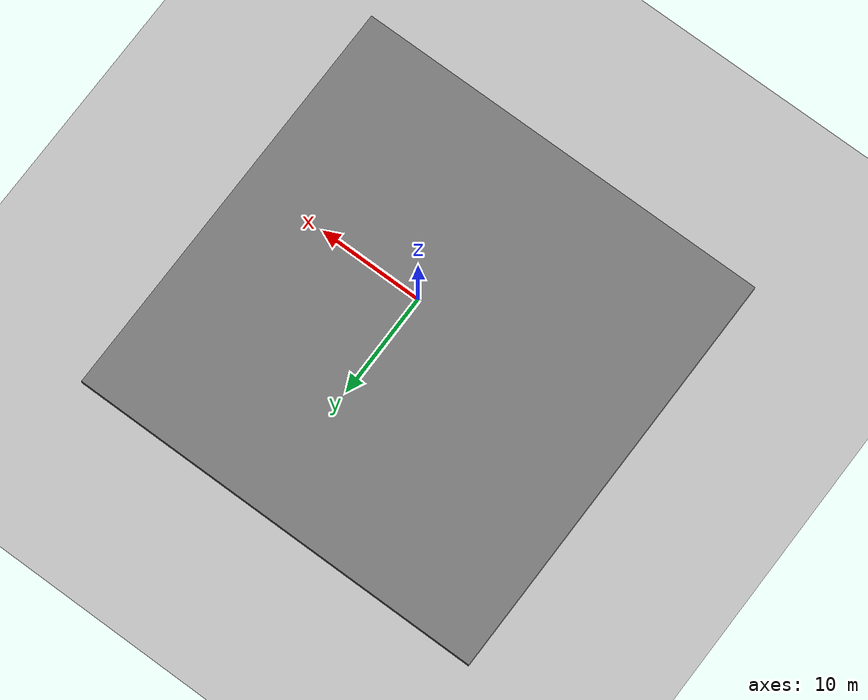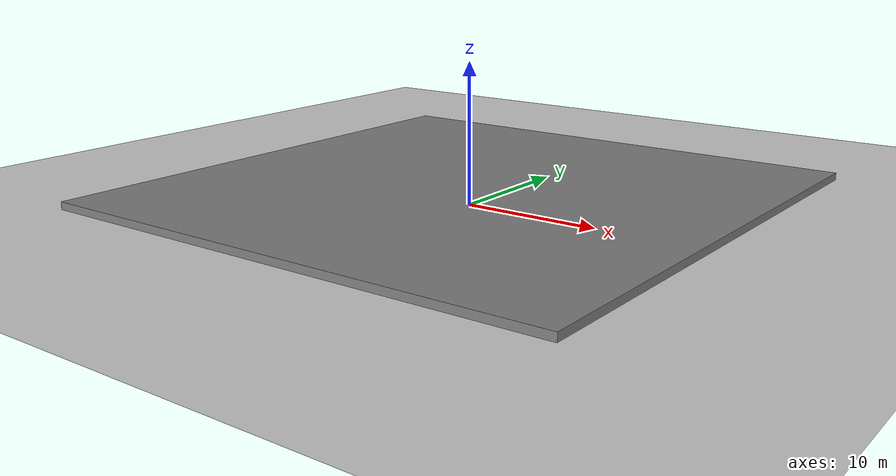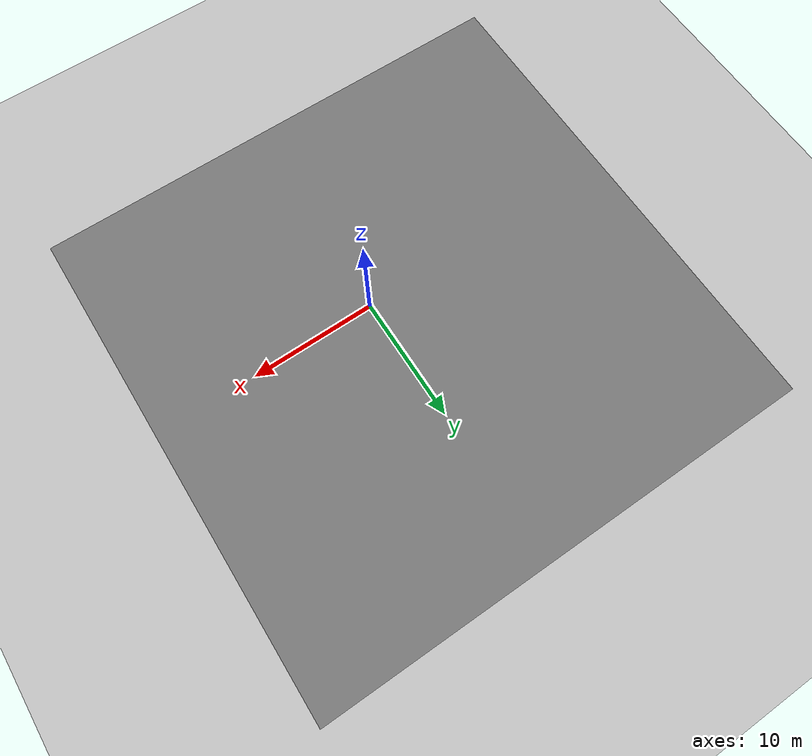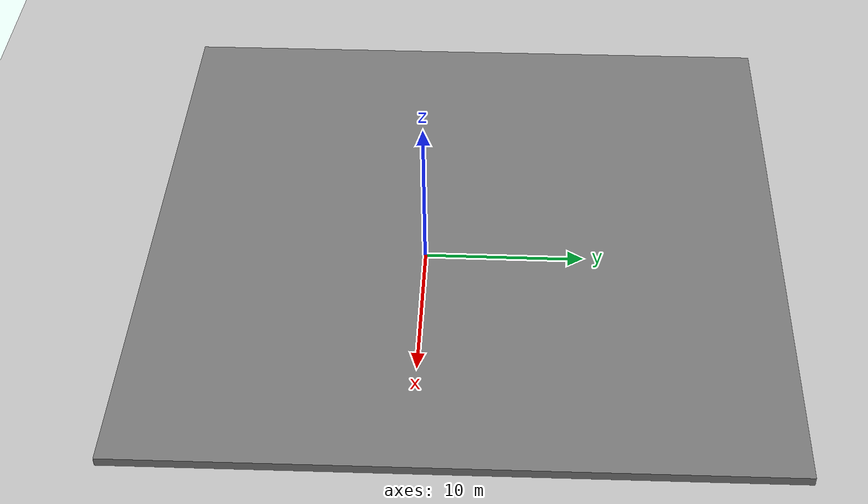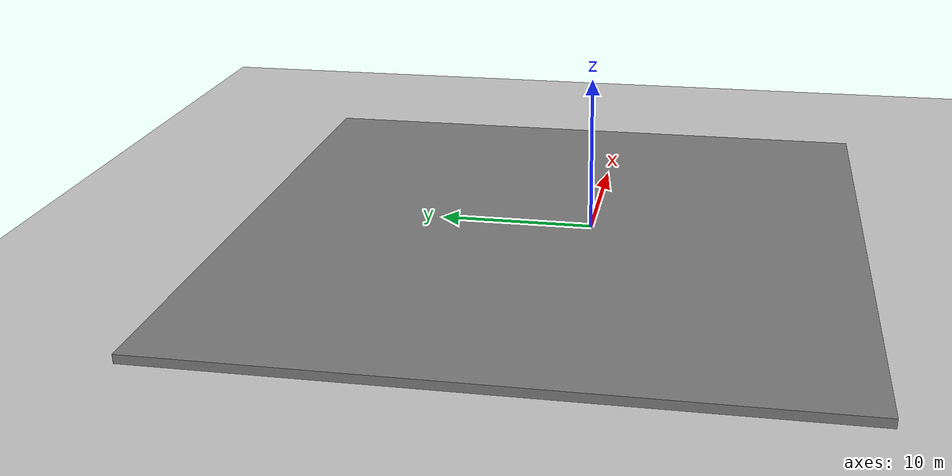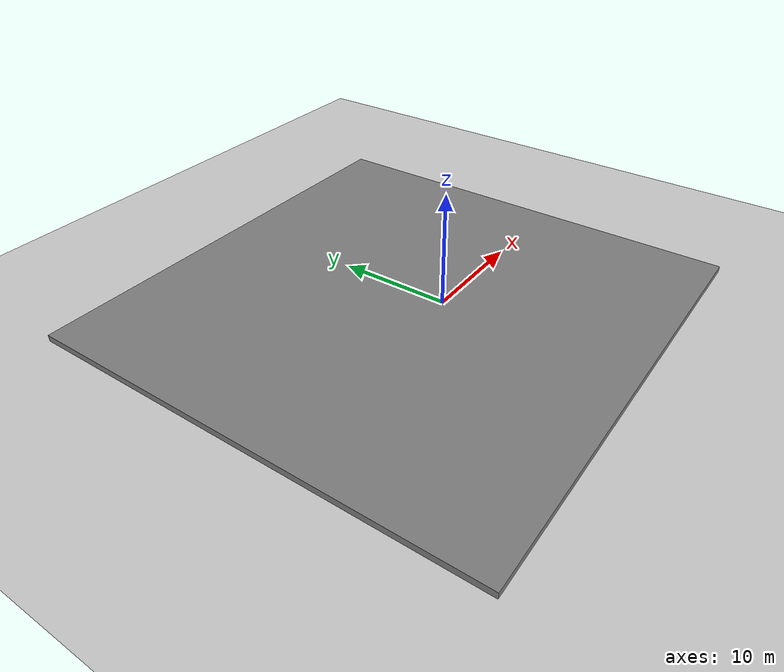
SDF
<sdf version="1.7">
 <world name="default">
  <plugin filename="gz-sim-imu-system" name="gz::sim::systems::Imu"/>
  <light name="sun" type="directional">
   <pose>0 0 10 0 -0 0</pose>
   <diffuse>0.8 0.8 0.8 1</diffuse>
   <specular>0.2 0.2 0.2 1</specular>
   <attenuation>
    <range>1000</range>
    <constant>0.9</constant>
    <linear>0.01</linear>
    <quadratic>0.001</quadratic>
   </attenuation>
   <direction>-0.5 0.1 -0.9</direction>
   <spot><inner_angle>0</inner_angle><outer_angle>0</outer_angle><falloff>0</falloff></spot>
  </light>
  <model name="ground_plane">
   <static>1</static>
   <link name="link">
    <collision name="collision">
     <geometry><plane><normal>0 0 1</normal><size>100 100</size></plane></geometry>
     <surface>
      <contact><collide_bitmask>65535</collide_bitmask></contact>
      <friction><ode><mu>100</mu><mu2>50</mu2></ode></friction>
     </surface>
    </collision>
    <visual name="visual">
     <cast_shadows>0</cast_shadows>
     <geometry><plane><normal>0 0 1</normal><size>100 100</size></plane></geometry>
     <material>
      <script><uri>file://media/materials/scripts/gazebo.material</uri><name>Gazebo/Grey</name></script>
     </material>
    </visual>
   </link>
  </model>
  <gravity>0 0 -9.8</gravity>
  <magnetic_field>6e-06 2.3e-05 -4.2e-05</magnetic_field>
  <atmosphere type="adiabatic"/>
  <physics type="ode">
   <max_step_size>0.001</max_step_size>
   <real_time_factor>1</real_time_factor>
   <real_time_update_rate>1000</real_time_update_rate>
  </physics>
  <scene><ambient>0.4 0.4 0.4 1</ambient><background>0.7 0.7 0.7 1</background><shadows>1</shadows></scene>
  <spherical_coordinates>
   <surface_model>EARTH_WGS84</surface_model>
   <latitude_deg>0</latitude_deg>
   <longitude_deg>0</longitude_deg>
   <elevation>0</elevation>
   <heading_deg>0</heading_deg>
  </spherical_coordinates>
  <model name="farm_(40*40)">
   <link name="link">
    <inertial>
     <mass>1</mass>
     <inertia><ixx>1</ixx><ixy>0</ixy><ixz>0</ixz><iyy>1</iyy><iyz>0</iyz><izz>1</izz></inertia>
    </inertial>
    <visual name="visual_1">
     <pose>-2 2.5 0 0 -0 0</pose>
     <cast_shadows>0</cast_shadows>
     <geometry><box><size>40 40 1</size></box></geometry>
     <material>
      <script>
       <uri>model://mud_box/materials/scripts</uri>
       <uri>model://mud_box/materials/textures</uri>
       <name>vrc/mud</name>
      </script>
      <shader type="pixel"><normal_map>__default__</normal_map></shader>
      <ambient>0.5 0.5 0.5 1</ambient>
      <diffuse>0.5 0.5 0.5 1</diffuse>
      <specular>0.2 0.2 0.2 1</specular>
      <emissive>0 0 0 1</emissive>
     </material>
    </visual>
    <visual name="visual_2">
     <pose>-2 2.5 0 0 -0 0</pose>
     <cast_shadows>0</cast_shadows>
     <geometry><box><size>40 40 1</size></box></geometry>
     <material>
      <script>
       <uri>model://mud_box/materials/scripts</uri>
       <uri>model://mud_box/materials/textures</uri>
       <name>vrc/mud</name>
      </script>
      <shader type="pixel"><normal_map>__default__</normal_map></shader>
      <ambient>0.5 0.5 0.5 1</ambient>
      <diffuse>0.5 0.5 0.5 1</diffuse>
      <specular>0.2 0.2 0.2 1</specular>
      <emissive>0 0 0 1</emissive>
     </material>
    </visual>
    <visual name="visual_3">
     <pose>-2 2.5 0 0 -0 0</pose>
     <cast_shadows>0</cast_shadows>
     <geometry><box><size>40 40 1</size></box></geometry>
     <material>
      <script>
       <uri>model://mud_box/materials/scripts</uri>
       <uri>model://mud_box/materials/textures</uri>
       <name>vrc/mud</name>
      </script>
      <shader type="pixel"><normal_map>__default__</normal_map></shader>
      <ambient>0.5 0.5 0.5 1</ambient>
      <diffuse>0.5 0.5 0.5 1</diffuse>
      <specular>0.2 0.2 0.2 1</specular>
      <emissive>0 0 0 1</emissive>
     </material>
    </visual>
    <visual name="visual_4">
     <pose>-2 2.5 0 0 -0 0</pose>
     <cast_shadows>0</cast_shadows>
     <geometry><box><size>40 40 1</size></box></geometry>
     <material>
      <script>
       <uri>model://mud_box/materials/scripts</uri>
       <uri>model://mud_box/materials/textures</uri>
       <name>vrc/mud</name>
      </script>
      <shader type="pixel"><normal_map>__default__</normal_map></shader>
      <ambient>0.5 0.5 0.5 1</ambient>
      <diffuse>0.5 0.5 0.5 1</diffuse>
      <specular>0.2 0.2 0.2 1</specular>
      <emissive>0 0 0 1</emissive>
     </material>
    </visual>
    <collision name="collision">
     <geometry><box><size>8 10 0.2</size></box></geometry>
     <surface>
      <friction>
       <ode><mu>1</mu><mu2>1</mu2><fdir1>0 0 0</fdir1><slip1>0</slip1><slip2>0</slip2></ode>
       <torsional>
        <coefficient>1</coefficient>
        <patch_radius>0</patch_radius>
        <surface_radius>0</surface_radius>
        <use_patch_radius>1</use_patch_radius>
        <ode><slip>0</slip></ode>
       </torsional>
      </friction>
      <bounce><restitution_coefficient>0</restitution_coefficient><threshold>1e+06</threshold></bounce>
      <contact>
       <collide_without_contact>0</collide_without_contact>
       <collide_without_contact_bitmask>1</collide_without_contact_bitmask>
       <collide_bitmask>1</collide_bitmask>
       <ode>
        <soft_cfm>0</soft_cfm>
        <soft_erp>0.2</soft_erp>
        <kp>1e+13</kp>
        <kd>1</kd>
        <max_vel>0.01</max_vel>
        <min_depth>0</min_depth>
       </ode>
       <bullet>
        <split_impulse>1</split_impulse>
        <split_impulse_penetration_threshold>-0.01</split_impulse_penetration_threshold>
        <soft_cfm>0</soft_cfm>
        <soft_erp>0.2</soft_erp>
        <kp>1e+13</kp>
        <kd>1</kd>
       </bullet>
      </contact>
     </surface>
    </collision>
   </link>
   <static>1</static>
   <pose>0.076557 -0.029559 0 0 -0 0</pose>
  </model>
 </world>
</sdf>
